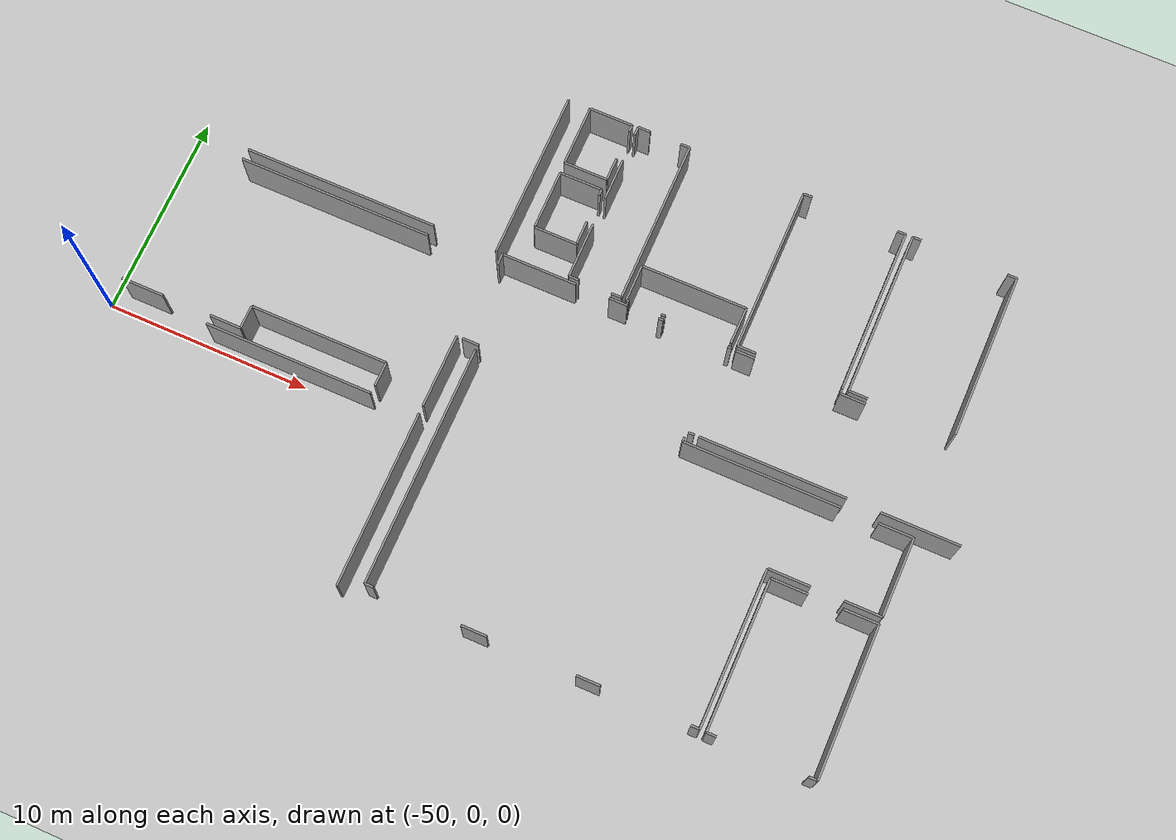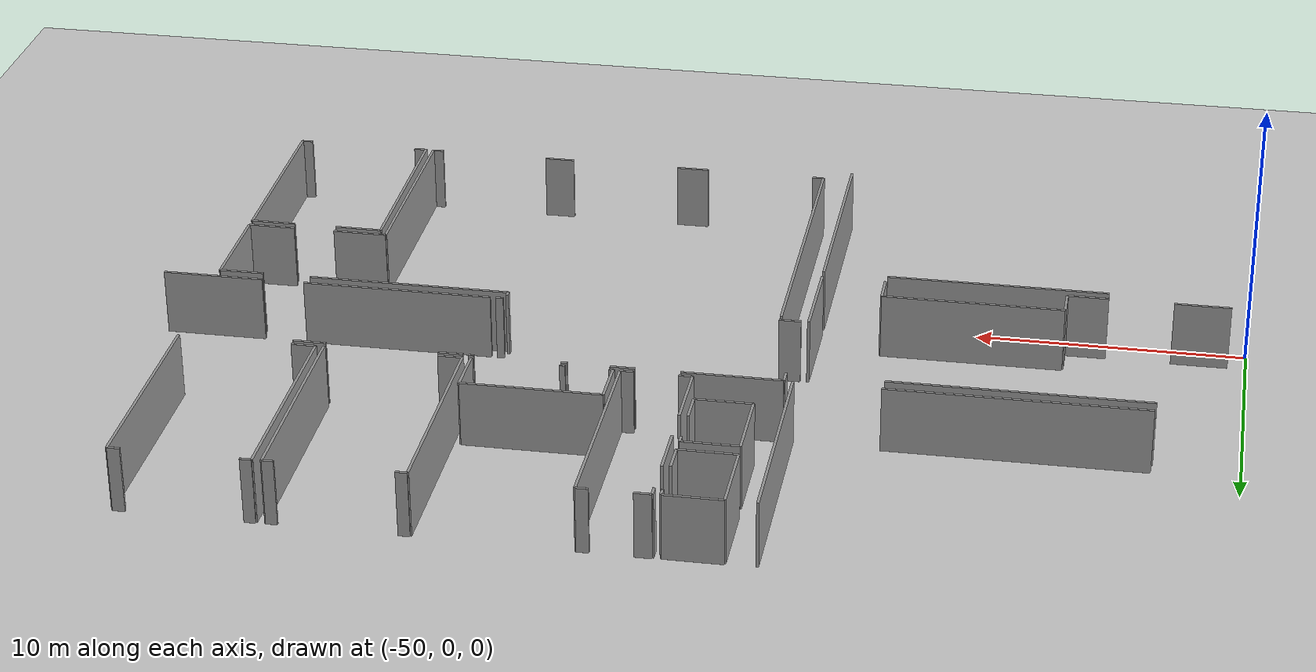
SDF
<sdf version="1.6">
 <world name="default">
  <model name="ground_plane">
   <static>1</static>
   <link name="link">
    <collision name="collision">
     <geometry><plane><normal>0 0 1</normal><size>100 100</size></plane></geometry>
     <surface><friction><ode><mu>100</mu><mu2>50</mu2></ode></friction></surface>
    </collision>
    <visual name="visual">
     <cast_shadows>0</cast_shadows>
     <geometry><plane><normal>0 0 1</normal><size>100 100</size></plane></geometry>
     <material>
      <script><uri>file://media/materials/scripts/gazebo.material</uri><name>Gazebo/Grey</name></script>
     </material>
    </visual>
   </link>
  </model>
  <model name="50037764_PLAN2">
   <static>1</static>
   <link name="Wall_204">
    <collision name="Wall_204_Collision">
     <geometry><box><size>1.18063958513 0.1 2.5</size></box></geometry>
     <pose>0.590319792567 0 1.25 0 0 0</pose>
    </collision>
    <visual name="Wall_204_Visual">
     <pose>0.590319792567 0 1.25 0 0 0</pose>
     <geometry><box><size>1.18063958513 0.1 2.5</size></box></geometry>
     <material>
      <script><uri>file://media/materials/scripts/gazebo.material</uri><name>Gazebo/Grey</name></script>
      <ambient>1 1 1 1</ambient>
     </material>
    </visual>
    <pose>99.2213127256 -20.51248157 0 0 0 1.57079632679</pose>
   </link>
   <link name="Wall_205">
    <collision name="Wall_205_Collision">
     <geometry><box><size>6.74792821191 0.1 2.5</size></box></geometry>
     <pose>3.37396410595 0 1.25 0 0 0</pose>
    </collision>
    <visual name="Wall_205_Visual">
     <pose>3.37396410595 0 1.25 0 0 0</pose>
     <geometry><box><size>6.74792821191 0.1 2.5</size></box></geometry>
     <material>
      <script><uri>file://media/materials/scripts/gazebo.material</uri><name>Gazebo/Grey</name></script>
      <ambient>1 1 1 1</ambient>
     </material>
    </visual>
    <pose>99.2213127256 -19.3318419848 0 0 0 3.14159265359</pose>
   </link>
   <link name="Wall_206">
    <collision name="Wall_206_Collision">
     <geometry><box><size>1.15521887234 0.1 2.5</size></box></geometry>
     <pose>0.577609436169 0 1.25 0 0 0</pose>
    </collision>
    <visual name="Wall_206_Visual">
     <pose>0.577609436169 0 1.25 0 0 0</pose>
     <geometry><box><size>1.15521887234 0.1 2.5</size></box></geometry>
     <material>
      <script><uri>file://media/materials/scripts/gazebo.material</uri><name>Gazebo/Grey</name></script>
      <ambient>1 1 1 1</ambient>
     </material>
    </visual>
    <pose>92.4733845137 -19.3318419848 0 0 0 -1.57079632679</pose>
   </link>
   <link name="Wall_207">
    <collision name="Wall_207_Collision">
     <geometry><box><size>1.53719050282 0.1 2.5</size></box></geometry>
     <pose>0.768595251411 0 1.25 0 0 0</pose>
    </collision>
    <visual name="Wall_207_Visual">
     <pose>0.768595251411 0 1.25 0 0 0</pose>
     <geometry><box><size>1.53719050282 0.1 2.5</size></box></geometry>
     <material>
      <script><uri>file://media/materials/scripts/gazebo.material</uri><name>Gazebo/Grey</name></script>
      <ambient>1 1 1 1</ambient>
     </material>
    </visual>
    <pose>92.4733845137 -20.4870608572 0 0 0 3.14159265359</pose>
   </link>
   <link name="Wall_208">
    <collision name="Wall_208_Collision">
     <geometry><box><size>2.09288728456 0.1 2.5</size></box></geometry>
     <pose>1.04644364228 0 1.25 0 0 0</pose>
    </collision>
    <visual name="Wall_208_Visual">
     <pose>1.04644364228 0 1.25 0 0 0</pose>
     <geometry><box><size>2.09288728456 0.1 2.5</size></box></geometry>
     <material>
      <script><uri>file://media/materials/scripts/gazebo.material</uri><name>Gazebo/Grey</name></script>
      <ambient>1 1 1 1</ambient>
     </material>
    </visual>
    <pose>88.5420712797 -20.4870608572 0 0 0 3.14159265359</pose>
   </link>
   <link name="Wall_211">
    <collision name="Wall_211_Collision">
     <geometry><box><size>9.51065127866 0.1 2.5</size></box></geometry>
     <pose>4.75532563933 0 1.25 0 0 0</pose>
    </collision>
    <visual name="Wall_211_Visual">
     <pose>4.75532563933 0 1.25 0 0 0</pose>
     <geometry><box><size>9.51065127866 0.1 2.5</size></box></geometry>
     <material>
      <script><uri>file://media/materials/scripts/gazebo.material</uri><name>Gazebo/Grey</name></script>
      <ambient>1 1 1 1</ambient>
     </material>
    </visual>
    <pose>88.8633890894 -12.9726727337 0 0 0 0.0</pose>
   </link>
   <link name="Wall_212">
    <collision name="Wall_212_Collision">
     <geometry><box><size>3.62835113588 0.1 2.5</size></box></geometry>
     <pose>1.81417556794 0 1.25 0 0 0</pose>
    </collision>
    <visual name="Wall_212_Visual">
     <pose>1.81417556794 0 1.25 0 0 0</pose>
     <geometry><box><size>3.62835113588 0.1 2.5</size></box></geometry>
     <material>
      <script><uri>file://media/materials/scripts/gazebo.material</uri><name>Gazebo/Grey</name></script>
      <ambient>1 1 1 1</ambient>
     </material>
    </visual>
    <pose>101.608571864 -16.8841832325 0 0 0 -1.57619107583</pose>
   </link>
   <link name="Wall_213">
    <collision name="Wall_213_Collision">
     <geometry><box><size>9.51319334994 0.1 2.5</size></box></geometry>
     <pose>4.75659667497 0 1.25 0 0 0</pose>
    </collision>
    <visual name="Wall_213_Visual">
     <pose>4.75659667497 0 1.25 0 0 0</pose>
     <geometry><box><size>9.51319334994 0.1 2.5</size></box></geometry>
     <material>
      <script><uri>file://media/materials/scripts/gazebo.material</uri><name>Gazebo/Grey</name></script>
      <ambient>1 1 1 1</ambient>
     </material>
    </visual>
    <pose>98.4256444151 -12.4344654024 0 0 0 3.14159265359</pose>
   </link>
   <link name="Wall_215">
    <collision name="Wall_215_Collision">
     <geometry><box><size>8.29780412157 0.1 2.5</size></box></geometry>
     <pose>4.14890206079 0 1.25 0 0 0</pose>
    </collision>
    <visual name="Wall_215_Visual">
     <pose>4.14890206079 0 1.25 0 0 0</pose>
     <geometry><box><size>8.29780412157 0.1 2.5</size></box></geometry>
     <material>
      <script><uri>file://media/materials/scripts/gazebo.material</uri><name>Gazebo/Grey</name></script>
      <ambient>1 1 1 1</ambient>
     </material>
    </visual>
    <pose>101.56205196 -4.136661752 0 0 0 -1.57045933662</pose>
   </link>
   <link name="Wall_219">
    <collision name="Wall_219_Collision">
     <geometry><box><size>8.23249783924 0.1 2.5</size></box></geometry>
     <pose>4.11624891962 0 1.25 0 0 0</pose>
    </collision>
    <visual name="Wall_219_Visual">
     <pose>4.11624891962 0 1.25 0 0 0</pose>
     <geometry><box><size>8.23249783924 0.1 2.5</size></box></geometry>
     <material>
      <script><uri>file://media/materials/scripts/gazebo.material</uri><name>Gazebo/Grey</name></script>
      <ambient>1 1 1 1</ambient>
     </material>
    </visual>
    <pose>90.9527174742 -20.9085362754 0 0 0 0.0</pose>
   </link>
   <link name="Wall_220">
    <collision name="Wall_220_Collision">
     <geometry><box><size>8.58228685109 0.1 2.5</size></box></geometry>
     <pose>4.29114342554 0 1.25 0 0 0</pose>
    </collision>
    <visual name="Wall_220_Visual">
     <pose>4.29114342554 0 1.25 0 0 0</pose>
     <geometry><box><size>8.58228685109 0.1 2.5</size></box></geometry>
     <material>
      <script><uri>file://media/materials/scripts/gazebo.material</uri><name>Gazebo/Grey</name></script>
      <ambient>1 1 1 1</ambient>
     </material>
    </visual>
    <pose>101.58416798 -20.9085362754 0 0 0 -1.57082594677</pose>
   </link>
   <link name="Wall_226">
    <collision name="Wall_226_Collision">
     <geometry><box><size>0.286999847476 0.1 2.5</size></box></geometry>
     <pose>0.143499923738 0 1.25 0 0 0</pose>
    </collision>
    <visual name="Wall_226_Visual">
     <pose>0.143499923738 0 1.25 0 0 0</pose>
     <geometry><box><size>0.286999847476 0.1 2.5</size></box></geometry>
     <material>
      <script><uri>file://media/materials/scripts/gazebo.material</uri><name>Gazebo/Grey</name></script>
      <ambient>1 1 1 1</ambient>
     </material>
    </visual>
    <pose>113.254308811 -16.8977833138 0 0 0 3.14159265359</pose>
   </link>
   <link name="Wall_227">
    <collision name="Wall_227_Collision">
     <geometry><box><size>0.80939549545 0.1 2.5</size></box></geometry>
     <pose>0.404697747725 0 1.25 0 0 0</pose>
    </collision>
    <visual name="Wall_227_Visual">
     <pose>0.404697747725 0 1.25 0 0 0</pose>
     <geometry><box><size>0.80939549545 0.1 2.5</size></box></geometry>
     <material>
      <script><uri>file://media/materials/scripts/gazebo.material</uri><name>Gazebo/Grey</name></script>
      <ambient>1 1 1 1</ambient>
     </material>
    </visual>
    <pose>102.694036301 -16.8977833138 0 0 0 3.14159265359</pose>
   </link>
   <link name="Wall_228">
    <collision name="Wall_228_Collision">
     <geometry><box><size>0.537775179216 0.1 2.5</size></box></geometry>
     <pose>0.268887589608 0 1.25 0 0 0</pose>
    </collision>
    <visual name="Wall_228_Visual">
     <pose>0.268887589608 0 1.25 0 0 0</pose>
     <geometry><box><size>0.537775179216 0.1 2.5</size></box></geometry>
     <material>
      <script><uri>file://media/materials/scripts/gazebo.material</uri><name>Gazebo/Grey</name></script>
      <ambient>1 1 1 1</ambient>
     </material>
    </visual>
    <pose>101.884640805 -12.9867812293 0 0 0 1.57079632679</pose>
   </link>
   <link name="Wall_229">
    <collision name="Wall_229_Collision">
     <geometry><box><size>3.67736031318 0.1 2.5</size></box></geometry>
     <pose>1.83868015659 0 1.25 0 0 0</pose>
    </collision>
    <visual name="Wall_229_Visual">
     <pose>1.83868015659 0 1.25 0 0 0</pose>
     <geometry><box><size>3.67736031318 0.1 2.5</size></box></geometry>
     <material>
      <script><uri>file://media/materials/scripts/gazebo.material</uri><name>Gazebo/Grey</name></script>
      <ambient>1 1 1 1</ambient>
     </material>
    </visual>
    <pose>101.884640805 -12.4490060501 0 0 0 0.0</pose>
   </link>
   <link name="Wall_230">
    <collision name="Wall_230_Collision">
     <geometry><box><size>0.901164268646 0.1 2.5</size></box></geometry>
     <pose>0.450582134323 0 1.25 0 0 0</pose>
    </collision>
    <visual name="Wall_230_Visual">
     <pose>0.450582134323 0 1.25 0 0 0</pose>
     <geometry><box><size>0.901164268646 0.1 2.5</size></box></geometry>
     <material>
      <script><uri>file://media/materials/scripts/gazebo.material</uri><name>Gazebo/Grey</name></script>
      <ambient>1 1 1 1</ambient>
     </material>
    </visual>
    <pose>107.211042758 -12.4490060501 0 0 0 0.0</pose>
   </link>
   <link name="Wall_231">
    <collision name="Wall_231_Collision">
     <geometry><box><size>0.230820072195 0.1 2.5</size></box></geometry>
     <pose>0.115410036097 0 1.25 0 0 0</pose>
    </collision>
    <visual name="Wall_231_Visual">
     <pose>0.115410036097 0 1.25 0 0 0</pose>
     <geometry><box><size>0.230820072195 0.1 2.5</size></box></geometry>
     <material>
      <script><uri>file://media/materials/scripts/gazebo.material</uri><name>Gazebo/Grey</name></script>
      <ambient>1 1 1 1</ambient>
     </material>
    </visual>
    <pose>109.650668565 -12.4490060501 0 0 0 0.0</pose>
   </link>
   <link name="Wall_232">
    <collision name="Wall_232_Collision">
     <geometry><box><size>0.192689003 0.1 2.5</size></box></geometry>
     <pose>0.0963445014998 0 1.25 0 0 0</pose>
    </collision>
    <visual name="Wall_232_Visual">
     <pose>0.0963445014998 0 1.25 0 0 0</pose>
     <geometry><box><size>0.192689003 0.1 2.5</size></box></geometry>
     <material>
      <script><uri>file://media/materials/scripts/gazebo.material</uri><name>Gazebo/Grey</name></script>
      <ambient>1 1 1 1</ambient>
     </material>
    </visual>
    <pose>113.049163659 -12.4490060501 0 0 0 0.0</pose>
   </link>
   <link name="Wall_233">
    <collision name="Wall_233_Collision">
     <geometry><box><size>0.492399206874 0.1 2.5</size></box></geometry>
     <pose>0.246199603437 0 1.25 0 0 0</pose>
    </collision>
    <visual name="Wall_233_Visual">
     <pose>0.246199603437 0 1.25 0 0 0</pose>
     <geometry><box><size>0.492399206874 0.1 2.5</size></box></geometry>
     <material>
      <script><uri>file://media/materials/scripts/gazebo.material</uri><name>Gazebo/Grey</name></script>
      <ambient>1 1 1 1</ambient>
     </material>
    </visual>
    <pose>107.705729829 -12.2101021913 0 0 0 3.14159265359</pose>
   </link>
   <link name="Wall_234">
    <collision name="Wall_234_Collision">
     <geometry><box><size>0.496720728049 0.1 2.5</size></box></geometry>
     <pose>0.248360364025 0 1.25 0 0 0</pose>
    </collision>
    <visual name="Wall_234_Visual">
     <pose>0.248360364025 0 1.25 0 0 0</pose>
     <geometry><box><size>0.496720728049 0.1 2.5</size></box></geometry>
     <material>
      <script><uri>file://media/materials/scripts/gazebo.material</uri><name>Gazebo/Grey</name></script>
      <ambient>1 1 1 1</ambient>
     </material>
    </visual>
    <pose>105.599115359 -12.2101021913 0 0 0 3.14159265359</pose>
   </link>
   <link name="Wall_235">
    <collision name="Wall_235_Collision">
     <geometry><box><size>2.77431491179 0.1 2.5</size></box></geometry>
     <pose>1.3871574559 0 1.25 0 0 0</pose>
    </collision>
    <visual name="Wall_235_Visual">
     <pose>1.3871574559 0 1.25 0 0 0</pose>
     <geometry><box><size>2.77431491179 0.1 2.5</size></box></geometry>
     <material>
      <script><uri>file://media/materials/scripts/gazebo.material</uri><name>Gazebo/Grey</name></script>
      <ambient>1 1 1 1</ambient>
     </material>
    </visual>
    <pose>105.102394631 -12.2101021913 0 0 0 1.57079632679</pose>
   </link>
   <link name="Wall_236">
    <collision name="Wall_236_Collision">
     <geometry><box><size>2.08536275357 0.1 2.5</size></box></geometry>
     <pose>1.04268137679 0 1.25 0 0 0</pose>
    </collision>
    <visual name="Wall_236_Visual">
     <pose>1.04268137679 0 1.25 0 0 0</pose>
     <geometry><box><size>2.08536275357 0.1 2.5</size></box></geometry>
     <material>
      <script><uri>file://media/materials/scripts/gazebo.material</uri><name>Gazebo/Grey</name></script>
      <ambient>1 1 1 1</ambient>
     </material>
    </visual>
    <pose>105.102394631 -8.02549697494 0 0 0 1.57079632679</pose>
   </link>
   <link name="Wall_237">
    <collision name="Wall_237_Collision">
     <geometry><box><size>0.417636890538 0.1 2.5</size></box></geometry>
     <pose>0.208818445269 0 1.25 0 0 0</pose>
    </collision>
    <visual name="Wall_237_Visual">
     <pose>0.208818445269 0 1.25 0 0 0</pose>
     <geometry><box><size>0.417636890538 0.1 2.5</size></box></geometry>
     <material>
      <script><uri>file://media/materials/scripts/gazebo.material</uri><name>Gazebo/Grey</name></script>
      <ambient>1 1 1 1</ambient>
     </material>
    </visual>
    <pose>105.102394631 -4.53230972596 0 0 0 1.57079632679</pose>
   </link>
   <link name="Wall_238">
    <collision name="Wall_238_Collision">
     <geometry><box><size>0.624841120545 0.1 2.5</size></box></geometry>
     <pose>0.312420560273 0 1.25 0 0 0</pose>
    </collision>
    <visual name="Wall_238_Visual">
     <pose>0.312420560273 0 1.25 0 0 0</pose>
     <geometry><box><size>0.624841120545 0.1 2.5</size></box></geometry>
     <material>
      <script><uri>file://media/materials/scripts/gazebo.material</uri><name>Gazebo/Grey</name></script>
      <ambient>1 1 1 1</ambient>
     </material>
    </visual>
    <pose>105.102394631 -4.11467283543 0 0 0 0.0</pose>
   </link>
   <link name="Wall_239">
    <collision name="Wall_239_Collision">
     <geometry><box><size>0.450455030759 0.1 2.5</size></box></geometry>
     <pose>0.22522751538 0 1.25 0 0 0</pose>
    </collision>
    <visual name="Wall_239_Visual">
     <pose>0.22522751538 0 1.25 0 0 0</pose>
     <geometry><box><size>0.450455030759 0.1 2.5</size></box></geometry>
     <material>
      <script><uri>file://media/materials/scripts/gazebo.material</uri><name>Gazebo/Grey</name></script>
      <ambient>1 1 1 1</ambient>
     </material>
    </visual>
    <pose>107.255020591 -4.11467283543 0 0 0 0.0</pose>
   </link>
   <link name="Wall_240">
    <collision name="Wall_240_Collision">
     <geometry><box><size>8.09542935983 0.1 2.5</size></box></geometry>
     <pose>4.04771467992 0 1.25 0 0 0</pose>
    </collision>
    <visual name="Wall_240_Visual">
     <pose>4.04771467992 0 1.25 0 0 0</pose>
     <geometry><box><size>8.09542935983 0.1 2.5</size></box></geometry>
     <material>
      <script><uri>file://media/materials/scripts/gazebo.material</uri><name>Gazebo/Grey</name></script>
      <ambient>1 1 1 1</ambient>
     </material>
    </visual>
    <pose>107.705475622 -4.11467283543 0 0 0 -1.57076492548</pose>
   </link>
   <link name="Wall_241">
    <collision name="Wall_241_Collision">
     <geometry><box><size>2.13889877472 0.1 2.5</size></box></geometry>
     <pose>1.06944938736 0 1.25 0 0 0</pose>
    </collision>
    <visual name="Wall_241_Visual">
     <pose>1.06944938736 0 1.25 0 0 0</pose>
     <geometry><box><size>2.13889877472 0.1 2.5</size></box></geometry>
     <material>
      <script><uri>file://media/materials/scripts/gazebo.material</uri><name>Gazebo/Grey</name></script>
      <ambient>1 1 1 1</ambient>
     </material>
    </visual>
    <pose>104.807005948 -7.13554324063 0 0 0 3.14159265359</pose>
   </link>
   <link name="Wall_242">
    <collision name="Wall_242_Collision">
     <geometry><box><size>2.99163658549 0.1 2.5</size></box></geometry>
     <pose>1.49581829274 0 1.25 0 0 0</pose>
    </collision>
    <visual name="Wall_242_Visual">
     <pose>1.49581829274 0 1.25 0 0 0</pose>
     <geometry><box><size>2.99163658549 0.1 2.5</size></box></geometry>
     <material>
      <script><uri>file://media/materials/scripts/gazebo.material</uri><name>Gazebo/Grey</name></script>
      <ambient>1 1 1 1</ambient>
     </material>
    </visual>
    <pose>102.668107174 -7.13554324063 0 0 0 1.57079632679</pose>
   </link>
   <link name="Wall_243">
    <collision name="Wall_243_Collision">
     <geometry><box><size>2.13889877472 0.1 2.5</size></box></geometry>
     <pose>1.06944938736 0 1.25 0 0 0</pose>
    </collision>
    <visual name="Wall_243_Visual">
     <pose>1.06944938736 0 1.25 0 0 0</pose>
     <geometry><box><size>2.13889877472 0.1 2.5</size></box></geometry>
     <material>
      <script><uri>file://media/materials/scripts/gazebo.material</uri><name>Gazebo/Grey</name></script>
      <ambient>1 1 1 1</ambient>
     </material>
    </visual>
    <pose>102.668107174 -4.14390665514 0 0 0 0.0</pose>
   </link>
   <link name="Wall_244">
    <collision name="Wall_244_Collision">
     <geometry><box><size>0.332426661244 0.1 2.5</size></box></geometry>
     <pose>0.166213330622 0 1.25 0 0 0</pose>
    </collision>
    <visual name="Wall_244_Visual">
     <pose>0.166213330622 0 1.25 0 0 0</pose>
     <geometry><box><size>0.332426661244 0.1 2.5</size></box></geometry>
     <material>
      <script><uri>file://media/materials/scripts/gazebo.material</uri><name>Gazebo/Grey</name></script>
      <ambient>1 1 1 1</ambient>
     </material>
    </visual>
    <pose>104.807005948 -4.14390665514 0 0 0 -1.57079632679</pose>
   </link>
   <link name="Wall_245">
    <collision name="Wall_245_Collision">
     <geometry><box><size>1.14156794957 0.1 2.5</size></box></geometry>
     <pose>0.570783974783 0 1.25 0 0 0</pose>
    </collision>
    <visual name="Wall_245_Visual">
     <pose>0.570783974783 0 1.25 0 0 0</pose>
     <geometry><box><size>1.14156794957 0.1 2.5</size></box></geometry>
     <material>
      <script><uri>file://media/materials/scripts/gazebo.material</uri><name>Gazebo/Grey</name></script>
      <ambient>1 1 1 1</ambient>
     </material>
    </visual>
    <pose>104.807005948 -5.99397529107 0 0 0 -1.57079632679</pose>
   </link>
   <link name="Wall_246">
    <collision name="Wall_246_Collision">
     <geometry><box><size>2.1050892267 0.1 2.5</size></box></geometry>
     <pose>1.05254461335 0 1.25 0 0 0</pose>
    </collision>
    <visual name="Wall_246_Visual">
     <pose>1.05254461335 0 1.25 0 0 0</pose>
     <geometry><box><size>2.1050892267 0.1 2.5</size></box></geometry>
     <material>
      <script><uri>file://media/materials/scripts/gazebo.material</uri><name>Gazebo/Grey</name></script>
      <ambient>1 1 1 1</ambient>
     </material>
    </visual>
    <pose>104.79887132 -10.6364583863 0 0 0 3.14159265359</pose>
   </link>
   <link name="Wall_247">
    <collision name="Wall_247_Collision">
     <geometry><box><size>2.94702323453 0.1 2.5</size></box></geometry>
     <pose>1.47351161727 0 1.25 0 0 0</pose>
    </collision>
    <visual name="Wall_247_Visual">
     <pose>1.47351161727 0 1.25 0 0 0</pose>
     <geometry><box><size>2.94702323453 0.1 2.5</size></box></geometry>
     <material>
      <script><uri>file://media/materials/scripts/gazebo.material</uri><name>Gazebo/Grey</name></script>
      <ambient>1 1 1 1</ambient>
     </material>
    </visual>
    <pose>102.693782094 -10.6364583863 0 0 0 1.57079632679</pose>
   </link>
   <link name="Wall_248">
    <collision name="Wall_248_Collision">
     <geometry><box><size>2.0987340485 0.1 2.5</size></box></geometry>
     <pose>1.04936702425 0 1.25 0 0 0</pose>
    </collision>
    <visual name="Wall_248_Visual">
     <pose>1.04936702425 0 1.25 0 0 0</pose>
     <geometry><box><size>2.0987340485 0.1 2.5</size></box></geometry>
     <material>
      <script><uri>file://media/materials/scripts/gazebo.material</uri><name>Gazebo/Grey</name></script>
      <ambient>1 1 1 1</ambient>
     </material>
    </visual>
    <pose>102.693782094 -7.68943515176 0 0 0 0.0</pose>
   </link>
   <link name="Wall_249">
    <collision name="Wall_249_Collision">
     <geometry><box><size>0.307895673395 0.1 2.5</size></box></geometry>
     <pose>0.153947836697 0 1.25 0 0 0</pose>
    </collision>
    <visual name="Wall_249_Visual">
     <pose>0.153947836697 0 1.25 0 0 0</pose>
     <geometry><box><size>0.307895673395 0.1 2.5</size></box></geometry>
     <material>
      <script><uri>file://media/materials/scripts/gazebo.material</uri><name>Gazebo/Grey</name></script>
      <ambient>1 1 1 1</ambient>
     </material>
    </visual>
    <pose>104.792516142 -7.68943515176 0 0 0 -1.57079632679</pose>
   </link>
   <link name="Wall_250">
    <collision name="Wall_250_Collision">
     <geometry><box><size>1.18856241733 0.1 2.5</size></box></geometry>
     <pose>0.594281208665 0 1.25 0 0 0</pose>
    </collision>
    <visual name="Wall_250_Visual">
     <pose>0.594281208665 0 1.25 0 0 0</pose>
     <geometry><box><size>1.18856241733 0.1 2.5</size></box></geometry>
     <material>
      <script><uri>file://media/materials/scripts/gazebo.material</uri><name>Gazebo/Grey</name></script>
      <ambient>1 1 1 1</ambient>
     </material>
    </visual>
    <pose>104.792516142 -9.44791295948 0 0 0 -1.56544935604</pose>
   </link>
   <link name="Wall_251">
    <collision name="Wall_251_Collision">
     <geometry><box><size>0.202857288118 0.1 2.5</size></box></geometry>
     <pose>0.101428644059 0 1.25 0 0 0</pose>
    </collision>
    <visual name="Wall_251_Visual">
     <pose>0.101428644059 0 1.25 0 0 0</pose>
     <geometry><box><size>0.202857288118 0.1 2.5</size></box></geometry>
     <material>
      <script><uri>file://media/materials/scripts/gazebo.material</uri><name>Gazebo/Grey</name></script>
      <ambient>1 1 1 1</ambient>
     </material>
    </visual>
    <pose>109.893182165 -12.2341501856 0 0 0 3.14159265359</pose>
   </link>
   <link name="Wall_252">
    <collision name="Wall_252_Collision">
     <geometry><box><size>0.14515227007 0.1 2.5</size></box></geometry>
     <pose>0.0725761350348 0 1.25 0 0 0</pose>
    </collision>
    <visual name="Wall_252_Visual">
     <pose>0.0725761350348 0 1.25 0 0 0</pose>
     <geometry><box><size>0.14515227007 0.1 2.5</size></box></geometry>
     <material>
      <script><uri>file://media/materials/scripts/gazebo.material</uri><name>Gazebo/Grey</name></script>
      <ambient>1 1 1 1</ambient>
     </material>
    </visual>
    <pose>108.105343434 -12.2341501856 0 0 0 3.14159265359</pose>
   </link>
   <link name="Wall_253">
    <collision name="Wall_253_Collision">
     <geometry><box><size>1.81994509126 0.1 2.5</size></box></geometry>
     <pose>0.90997254563 0 1.25 0 0 0</pose>
    </collision>
    <visual name="Wall_253_Visual">
     <pose>0.90997254563 0 1.25 0 0 0</pose>
     <geometry><box><size>1.81994509126 0.1 2.5</size></box></geometry>
     <material>
      <script><uri>file://media/materials/scripts/gazebo.material</uri><name>Gazebo/Grey</name></script>
      <ambient>1 1 1 1</ambient>
     </material>
    </visual>
    <pose>107.960191164 -12.2341501856 0 0 0 1.57079632679</pose>
   </link>
   <link name="Wall_254">
    <collision name="Wall_254_Collision">
     <geometry><box><size>5.16345518328 0.1 2.5</size></box></geometry>
     <pose>2.58172759164 0 1.25 0 0 0</pose>
    </collision>
    <visual name="Wall_254_Visual">
     <pose>2.58172759164 0 1.25 0 0 0</pose>
     <geometry><box><size>5.16345518328 0.1 2.5</size></box></geometry>
     <material>
      <script><uri>file://media/materials/scripts/gazebo.material</uri><name>Gazebo/Grey</name></script>
      <ambient>1 1 1 1</ambient>
     </material>
    </visual>
    <pose>107.960191164 -10.4142050943 0 0 0 0.0</pose>
   </link>
   <link name="Wall_255">
    <collision name="Wall_255_Collision">
     <geometry><box><size>1.82006446275 0.1 2.5</size></box></geometry>
     <pose>0.910032231377 0 1.25 0 0 0</pose>
    </collision>
    <visual name="Wall_255_Visual">
     <pose>0.910032231377 0 1.25 0 0 0</pose>
     <geometry><box><size>1.82006446275 0.1 2.5</size></box></geometry>
     <material>
      <script><uri>file://media/materials/scripts/gazebo.material</uri><name>Gazebo/Grey</name></script>
      <ambient>1 1 1 1</ambient>
     </material>
    </visual>
    <pose>113.123646347 -10.4142050943 0 0 0 -1.58224945972</pose>
   </link>
   <link name="Wall_256">
    <collision name="Wall_256_Collision">
     <geometry><box><size>0.416137068483 0.1 2.5</size></box></geometry>
     <pose>0.208068534242 0 1.25 0 0 0</pose>
    </collision>
    <visual name="Wall_256_Visual">
     <pose>0.208068534242 0 1.25 0 0 0</pose>
     <geometry><box><size>0.416137068483 0.1 2.5</size></box></geometry>
     <material>
      <script><uri>file://media/materials/scripts/gazebo.material</uri><name>Gazebo/Grey</name></script>
      <ambient>1 1 1 1</ambient>
     </material>
    </visual>
    <pose>118.498347654 -28.9018252072 0 0 0 3.14159265359</pose>
   </link>
   <link name="Wall_257">
    <collision name="Wall_257_Collision">
     <geometry><box><size>1.14698256139 0.1 2.5</size></box></geometry>
     <pose>0.573491280696 0 1.25 0 0 0</pose>
    </collision>
    <visual name="Wall_257_Visual">
     <pose>0.573491280696 0 1.25 0 0 0</pose>
     <geometry><box><size>1.14698256139 0.1 2.5</size></box></geometry>
     <material>
      <script><uri>file://media/materials/scripts/gazebo.material</uri><name>Gazebo/Grey</name></script>
      <ambient>1 1 1 1</ambient>
     </material>
    </visual>
    <pose>113.875336824 -28.9018252072 0 0 0 3.14159265359</pose>
   </link>
   <link name="Wall_258">
    <collision name="Wall_258_Collision">
     <geometry><box><size>1.23290457064 0.1 2.5</size></box></geometry>
     <pose>0.616452285322 0 1.25 0 0 0</pose>
    </collision>
    <visual name="Wall_258_Visual">
     <pose>0.616452285322 0 1.25 0 0 0</pose>
     <geometry><box><size>1.23290457064 0.1 2.5</size></box></geometry>
     <material>
      <script><uri>file://media/materials/scripts/gazebo.material</uri><name>Gazebo/Grey</name></script>
      <ambient>1 1 1 1</ambient>
     </material>
    </visual>
    <pose>108.504448625 -28.9018252072 0 0 0 3.14159265359</pose>
   </link>
   <link name="Wall_259">
    <collision name="Wall_259_Collision">
     <geometry><box><size>0.429864253394 0.1 2.5</size></box></geometry>
     <pose>0.214932126697 0 1.25 0 0 0</pose>
    </collision>
    <visual name="Wall_259_Visual">
     <pose>0.214932126697 0 1.25 0 0 0</pose>
     <geometry><box><size>0.429864253394 0.1 2.5</size></box></geometry>
     <material>
      <script><uri>file://media/materials/scripts/gazebo.material</uri><name>Gazebo/Grey</name></script>
      <ambient>1 1 1 1</ambient>
     </material>
    </visual>
    <pose>103.085769485 -28.9018252072 0 0 0 3.14159265359</pose>
   </link>
   <link name="Wall_260">
    <collision name="Wall_260_Collision">
     <geometry><box><size>11.738624231 0.1 2.5</size></box></geometry>
     <pose>5.86931211551 0 1.25 0 0 0</pose>
    </collision>
    <visual name="Wall_260_Visual">
     <pose>5.86931211551 0 1.25 0 0 0</pose>
     <geometry><box><size>11.738624231 0.1 2.5</size></box></geometry>
     <material>
      <script><uri>file://media/materials/scripts/gazebo.material</uri><name>Gazebo/Grey</name></script>
      <ambient>1 1 1 1</ambient>
     </material>
    </visual>
    <pose>102.655905232 -28.9018252072 0 0 0 1.57079632679</pose>
   </link>
   <link name="Wall_261">
    <collision name="Wall_261_Collision">
     <geometry><box><size>0.214855864558 0.1 2.5</size></box></geometry>
     <pose>0.107427932279 0 1.25 0 0 0</pose>
    </collision>
    <visual name="Wall_261_Visual">
     <pose>0.107427932279 0 1.25 0 0 0</pose>
     <geometry><box><size>0.214855864558 0.1 2.5</size></box></geometry>
     <material>
      <script><uri>file://media/materials/scripts/gazebo.material</uri><name>Gazebo/Grey</name></script>
      <ambient>1 1 1 1</ambient>
     </material>
    </visual>
    <pose>112.887742132 -17.1632009762 0 0 0 -1.57079632679</pose>
   </link>
   <link name="Wall_262">
    <collision name="Wall_262_Collision">
     <geometry><box><size>7.55808632874 0.1 2.5</size></box></geometry>
     <pose>3.77904316437 0 1.25 0 0 0</pose>
    </collision>
    <visual name="Wall_262_Visual">
     <pose>3.77904316437 0 1.25 0 0 0</pose>
     <geometry><box><size>7.55808632874 0.1 2.5</size></box></geometry>
     <material>
      <script><uri>file://media/materials/scripts/gazebo.material</uri><name>Gazebo/Grey</name></script>
      <ambient>1 1 1 1</ambient>
     </material>
    </visual>
    <pose>112.887742132 -17.3780568407 0 0 0 0.0</pose>
   </link>
   <link name="Wall_263">
    <collision name="Wall_263_Collision">
     <geometry><box><size>1.65310895318 0.1 2.5</size></box></geometry>
     <pose>0.826554476588 0 1.25 0 0 0</pose>
    </collision>
    <visual name="Wall_263_Visual">
     <pose>0.826554476588 0 1.25 0 0 0</pose>
     <geometry><box><size>1.65310895318 0.1 2.5</size></box></geometry>
     <material>
      <script><uri>file://media/materials/scripts/gazebo.material</uri><name>Gazebo/Grey</name></script>
      <ambient>1 1 1 1</ambient>
     </material>
    </visual>
    <pose>122.254003762 -17.3780568407 0 0 0 0.0</pose>
   </link>
   <link name="Wall_264">
    <collision name="Wall_264_Collision">
     <geometry><box><size>3.84976358737 0.1 2.5</size></box></geometry>
     <pose>1.92488179369 0 1.25 0 0 0</pose>
    </collision>
    <visual name="Wall_264_Visual">
     <pose>1.92488179369 0 1.25 0 0 0</pose>
     <geometry><box><size>3.84976358737 0.1 2.5</size></box></geometry>
     <material>
      <script><uri>file://media/materials/scripts/gazebo.material</uri><name>Gazebo/Grey</name></script>
      <ambient>1 1 1 1</ambient>
     </material>
    </visual>
    <pose>123.907112715 -17.3780568407 0 0 0 -1.57079632679</pose>
   </link>
   <link name="Wall_265">
    <collision name="Wall_265_Collision">
     <geometry><box><size>1.77614520311 0.1 2.5</size></box></geometry>
     <pose>0.888072601556 0 1.25 0 0 0</pose>
    </collision>
    <visual name="Wall_265_Visual">
     <pose>0.888072601556 0 1.25 0 0 0</pose>
     <geometry><box><size>1.77614520311 0.1 2.5</size></box></geometry>
     <material>
      <script><uri>file://media/materials/scripts/gazebo.material</uri><name>Gazebo/Grey</name></script>
      <ambient>1 1 1 1</ambient>
     </material>
    </visual>
    <pose>123.907112715 -21.2278204281 0 0 0 3.14159265359</pose>
   </link>
   <link name="Wall_266">
    <collision name="Wall_266_Collision">
     <geometry><box><size>2.03467385225 0.1 2.5</size></box></geometry>
     <pose>1.01733692613 0 1.25 0 0 0</pose>
    </collision>
    <visual name="Wall_266_Visual">
     <pose>1.01733692613 0 1.25 0 0 0</pose>
     <geometry><box><size>2.03467385225 0.1 2.5</size></box></geometry>
     <material>
      <script><uri>file://media/materials/scripts/gazebo.material</uri><name>Gazebo/Grey</name></script>
      <ambient>1 1 1 1</ambient>
     </material>
    </visual>
    <pose>120.559459047 -21.2278204281 0 0 0 3.14159265359</pose>
   </link>
   <link name="Wall_267">
    <collision name="Wall_267_Collision">
     <geometry><box><size>7.67405031865 0.1 2.5</size></box></geometry>
     <pose>3.83702515932 0 1.25 0 0 0</pose>
    </collision>
    <visual name="Wall_267_Visual">
     <pose>3.83702515932 0 1.25 0 0 0</pose>
     <geometry><box><size>7.67405031865 0.1 2.5</size></box></geometry>
     <material>
      <script><uri>file://media/materials/scripts/gazebo.material</uri><name>Gazebo/Grey</name></script>
      <ambient>1 1 1 1</ambient>
     </material>
    </visual>
    <pose>118.524785195 -21.2278204281 0 0 0 -1.57424139068</pose>
   </link>
   <link name="Wall_277">
    <collision name="Wall_277_Collision">
     <geometry><box><size>1.23671767756 0.1 2.5</size></box></geometry>
     <pose>0.618358838782 0 1.25 0 0 0</pose>
    </collision>
    <visual name="Wall_277_Visual">
     <pose>0.618358838782 0 1.25 0 0 0</pose>
     <geometry><box><size>1.23671767756 0.1 2.5</size></box></geometry>
     <material>
      <script><uri>file://media/materials/scripts/gazebo.material</uri><name>Gazebo/Grey</name></script>
      <ambient>1 1 1 1</ambient>
     </material>
    </visual>
    <pose>119.735065331 -12.4780873456 0 0 0 3.14159265359</pose>
   </link>
   <link name="Wall_278">
    <collision name="Wall_278_Collision">
     <geometry><box><size>0.909807310997 0.1 2.5</size></box></geometry>
     <pose>0.454903655499 0 1.25 0 0 0</pose>
    </collision>
    <visual name="Wall_278_Visual">
     <pose>0.454903655499 0 1.25 0 0 0</pose>
     <geometry><box><size>0.909807310997 0.1 2.5</size></box></geometry>
     <material>
      <script><uri>file://media/materials/scripts/gazebo.material</uri><name>Gazebo/Grey</name></script>
      <ambient>1 1 1 1</ambient>
     </material>
    </visual>
    <pose>114.366464996 -12.4780873456 0 0 0 3.14159265359</pose>
   </link>
   <link name="Wall_279">
    <collision name="Wall_279_Collision">
     <geometry><box><size>7.09644618435 0.1 2.5</size></box></geometry>
     <pose>3.54822309218 0 1.25 0 0 0</pose>
    </collision>
    <visual name="Wall_279_Visual">
     <pose>3.54822309218 0 1.25 0 0 0</pose>
     <geometry><box><size>7.09644618435 0.1 2.5</size></box></geometry>
     <material>
      <script><uri>file://media/materials/scripts/gazebo.material</uri><name>Gazebo/Grey</name></script>
      <ambient>1 1 1 1</ambient>
     </material>
    </visual>
    <pose>113.456657685 -16.8886826987 0 0 0 0.0</pose>
   </link>
   <link name="Wall_280">
    <collision name="Wall_280_Collision">
     <geometry><box><size>3.78107682139 0.1 2.5</size></box></geometry>
     <pose>1.8905384107 0 1.25 0 0 0</pose>
    </collision>
    <visual name="Wall_280_Visual">
     <pose>1.8905384107 0 1.25 0 0 0</pose>
     <geometry><box><size>3.78107682139 0.1 2.5</size></box></geometry>
     <material>
      <script><uri>file://media/materials/scripts/gazebo.material</uri><name>Gazebo/Grey</name></script>
      <ambient>1 1 1 1</ambient>
     </material>
    </visual>
    <pose>122.148762011 -16.8886826987 0 0 0 0.0</pose>
   </link>
   <link name="Wall_287">
    <collision name="Wall_287_Collision">
     <geometry><box><size>0.903960547054 0.1 2.5</size></box></geometry>
     <pose>0.451980273527 0 1.25 0 0 0</pose>
    </collision>
    <visual name="Wall_287_Visual">
     <pose>0.451980273527 0 1.25 0 0 0</pose>
     <geometry><box><size>0.903960547054 0.1 2.5</size></box></geometry>
     <material>
      <script><uri>file://media/materials/scripts/gazebo.material</uri><name>Gazebo/Grey</name></script>
      <ambient>1 1 1 1</ambient>
     </material>
    </visual>
    <pose>114.328842341 -12.2341501856 0 0 0 3.14159265359</pose>
   </link>
   <link name="Wall_288">
    <collision name="Wall_288_Collision">
     <geometry><box><size>8.09748843358 0.1 2.5</size></box></geometry>
     <pose>4.04874421679 0 1.25 0 0 0</pose>
    </collision>
    <visual name="Wall_288_Visual">
     <pose>4.04874421679 0 1.25 0 0 0</pose>
     <geometry><box><size>8.09748843358 0.1 2.5</size></box></geometry>
     <material>
      <script><uri>file://media/materials/scripts/gazebo.material</uri><name>Gazebo/Grey</name></script>
      <ambient>1 1 1 1</ambient>
     </material>
    </visual>
    <pose>113.424881794 -12.2341501856 0 0 0 1.57079632679</pose>
   </link>
   <link name="Wall_289">
    <collision name="Wall_289_Collision">
     <geometry><box><size>0.42401748945 0.1 2.5</size></box></geometry>
     <pose>0.212008744725 0 1.25 0 0 0</pose>
    </collision>
    <visual name="Wall_289_Visual">
     <pose>0.212008744725 0 1.25 0 0 0</pose>
     <geometry><box><size>0.42401748945 0.1 2.5</size></box></geometry>
     <material>
      <script><uri>file://media/materials/scripts/gazebo.material</uri><name>Gazebo/Grey</name></script>
      <ambient>1 1 1 1</ambient>
     </material>
    </visual>
    <pose>113.424881794 -4.136661752 0 0 0 0.0</pose>
   </link>
   <link name="Wall_290">
    <collision name="Wall_290_Collision">
     <geometry><box><size>0.415628654227 0.1 2.5</size></box></geometry>
     <pose>0.207814327114 0 1.25 0 0 0</pose>
    </collision>
    <visual name="Wall_290_Visual">
     <pose>0.207814327114 0 1.25 0 0 0</pose>
     <geometry><box><size>0.415628654227 0.1 2.5</size></box></geometry>
     <material>
      <script><uri>file://media/materials/scripts/gazebo.material</uri><name>Gazebo/Grey</name></script>
      <ambient>1 1 1 1</ambient>
     </material>
    </visual>
    <pose>118.060094565 -4.136661752 0 0 0 0.0</pose>
   </link>
   <link name="Wall_291">
    <collision name="Wall_291_Collision">
     <geometry><box><size>8.09757002885 0.1 2.5</size></box></geometry>
     <pose>4.04878501442 0 1.25 0 0 0</pose>
    </collision>
    <visual name="Wall_291_Visual">
     <pose>4.04878501442 0 1.25 0 0 0</pose>
     <geometry><box><size>8.09757002885 0.1 2.5</size></box></geometry>
     <material>
      <script><uri>file://media/materials/scripts/gazebo.material</uri><name>Gazebo/Grey</name></script>
      <ambient>1 1 1 1</ambient>
     </material>
    </visual>
    <pose>118.475723219 -4.136661752 0 0 0 -1.56630711074</pose>
   </link>
   <link name="Wall_292">
    <collision name="Wall_292_Collision">
     <geometry><box><size>0.901164268646 0.1 2.5</size></box></geometry>
     <pose>0.450582134323 0 1.25 0 0 0</pose>
    </collision>
    <visual name="Wall_292_Visual">
     <pose>0.450582134323 0 1.25 0 0 0</pose>
     <geometry><box><size>0.901164268646 0.1 2.5</size></box></geometry>
     <material>
      <script><uri>file://media/materials/scripts/gazebo.material</uri><name>Gazebo/Grey</name></script>
      <ambient>1 1 1 1</ambient>
     </material>
    </visual>
    <pose>119.717525039 -12.2106360262 0 0 0 3.14159265359</pose>
   </link>
   <link name="Wall_293">
    <collision name="Wall_293_Collision">
     <geometry><box><size>8.09563272154 0.1 2.5</size></box></geometry>
     <pose>4.04781636077 0 1.25 0 0 0</pose>
    </collision>
    <visual name="Wall_293_Visual">
     <pose>4.04781636077 0 1.25 0 0 0</pose>
     <geometry><box><size>8.09563272154 0.1 2.5</size></box></geometry>
     <material>
      <script><uri>file://media/materials/scripts/gazebo.material</uri><name>Gazebo/Grey</name></script>
      <ambient>1 1 1 1</ambient>
     </material>
    </visual>
    <pose>118.816360771 -12.2106360262 0 0 0 1.57079632679</pose>
   </link>
   <link name="Wall_294">
    <collision name="Wall_294_Collision">
     <geometry><box><size>0.421221211043 0.1 2.5</size></box></geometry>
     <pose>0.210610605521 0 1.25 0 0 0</pose>
    </collision>
    <visual name="Wall_294_Visual">
     <pose>0.210610605521 0 1.25 0 0 0</pose>
     <geometry><box><size>0.421221211043 0.1 2.5</size></box></geometry>
     <material>
      <script><uri>file://media/materials/scripts/gazebo.material</uri><name>Gazebo/Grey</name></script>
      <ambient>1 1 1 1</ambient>
     </material>
    </visual>
    <pose>118.816360771 -4.11500330469 0 0 0 0.0</pose>
   </link>
   <link name="Wall_295">
    <collision name="Wall_295_Collision">
     <geometry><box><size>0.45528496619 0.1 2.5</size></box></geometry>
     <pose>0.227642483095 0 1.25 0 0 0</pose>
    </collision>
    <visual name="Wall_295_Visual">
     <pose>0.227642483095 0 1.25 0 0 0</pose>
     <geometry><box><size>0.45528496619 0.1 2.5</size></box></geometry>
     <material>
      <script><uri>file://media/materials/scripts/gazebo.material</uri><name>Gazebo/Grey</name></script>
      <ambient>1 1 1 1</ambient>
     </material>
    </visual>
    <pose>123.443184707 -4.11500330469 0 0 0 0.0</pose>
   </link>
   <link name="Wall_296">
    <collision name="Wall_296_Collision">
     <geometry><box><size>8.09564191707 0.1 2.5</size></box></geometry>
     <pose>4.04782095854 0 1.25 0 0 0</pose>
    </collision>
    <visual name="Wall_296_Visual">
     <pose>4.04782095854 0 1.25 0 0 0</pose>
     <geometry><box><size>8.09564191707 0.1 2.5</size></box></geometry>
     <material>
      <script><uri>file://media/materials/scripts/gazebo.material</uri><name>Gazebo/Grey</name></script>
      <ambient>1 1 1 1</ambient>
     </material>
    </visual>
    <pose>123.898469673 -4.11500330469 0 0 0 -1.56928910268</pose>
   </link>
   <link name="Wall_338">
    <collision name="Wall_338_Collision">
     <geometry><box><size>0.417153896995 0.1 2.5</size></box></geometry>
     <pose>0.208576948498 0 1.25 0 0 0</pose>
    </collision>
    <visual name="Wall_338_Visual">
     <pose>0.208576948498 0 1.25 0 0 0</pose>
     <geometry><box><size>0.417153896995 0.1 2.5</size></box></geometry>
     <material>
      <script><uri>file://media/materials/scripts/gazebo.material</uri><name>Gazebo/Grey</name></script>
      <ambient>1 1 1 1</ambient>
     </material>
    </visual>
    <pose>123.928720321 -28.9119934923 0 0 0 3.14159265359</pose>
   </link>
   <link name="Wall_339">
    <collision name="Wall_339_Collision">
     <geometry><box><size>0.465453251309 0.1 2.5</size></box></geometry>
     <pose>0.232726625655 0 1.25 0 0 0</pose>
    </collision>
    <visual name="Wall_339_Visual">
     <pose>0.232726625655 0 1.25 0 0 0</pose>
     <geometry><box><size>0.465453251309 0.1 2.5</size></box></geometry>
     <material>
      <script><uri>file://media/materials/scripts/gazebo.material</uri><name>Gazebo/Grey</name></script>
      <ambient>1 1 1 1</ambient>
     </material>
    </visual>
    <pose>119.273425187 -28.9119934923 0 0 0 3.14159265359</pose>
   </link>
   <link name="Wall_340">
    <collision name="Wall_340_Collision">
     <geometry><box><size>7.334129849 0.1 2.5</size></box></geometry>
     <pose>3.6670649245 0 1.25 0 0 0</pose>
    </collision>
    <visual name="Wall_340_Visual">
     <pose>3.6670649245 0 1.25 0 0 0</pose>
     <geometry><box><size>7.334129849 0.1 2.5</size></box></geometry>
     <material>
      <script><uri>file://media/materials/scripts/gazebo.material</uri><name>Gazebo/Grey</name></script>
      <ambient>1 1 1 1</ambient>
     </material>
    </visual>
    <pose>118.807971936 -28.9119934923 0 0 0 1.57079632679</pose>
   </link>
   <link name="Wall_341">
    <collision name="Wall_341_Collision">
     <geometry><box><size>1.7669937465 0.1 2.5</size></box></geometry>
     <pose>0.883496873252 0 1.25 0 0 0</pose>
    </collision>
    <visual name="Wall_341_Visual">
     <pose>0.883496873252 0 1.25 0 0 0</pose>
     <geometry><box><size>1.7669937465 0.1 2.5</size></box></geometry>
     <material>
      <script><uri>file://media/materials/scripts/gazebo.material</uri><name>Gazebo/Grey</name></script>
      <ambient>1 1 1 1</ambient>
     </material>
    </visual>
    <pose>118.807971936 -21.5778636433 0 0 0 0.0</pose>
   </link>
   <link name="Wall_342">
    <collision name="Wall_342_Collision">
     <geometry><box><size>1.68615587981 0.1 2.5</size></box></geometry>
     <pose>0.843077939905 0 1.25 0 0 0</pose>
    </collision>
    <visual name="Wall_342_Visual">
     <pose>0.843077939905 0 1.25 0 0 0</pose>
     <geometry><box><size>1.68615587981 0.1 2.5</size></box></geometry>
     <material>
      <script><uri>file://media/materials/scripts/gazebo.material</uri><name>Gazebo/Grey</name></script>
      <ambient>1 1 1 1</ambient>
     </material>
    </visual>
    <pose>122.203670751 -21.5778636433 0 0 0 0.0</pose>
   </link>
   <link name="Wall_343">
    <collision name="Wall_343_Collision">
     <geometry><box><size>7.33423297702 0.1 2.5</size></box></geometry>
     <pose>3.66711648851 0 1.25 0 0 0</pose>
    </collision>
    <visual name="Wall_343_Visual">
     <pose>3.66711648851 0 1.25 0 0 0</pose>
     <geometry><box><size>7.33423297702 0.1 2.5</size></box></geometry>
     <material>
      <script><uri>file://media/materials/scripts/gazebo.material</uri><name>Gazebo/Grey</name></script>
      <ambient>1 1 1 1</ambient>
     </material>
    </visual>
    <pose>123.889826631 -21.5778636433 0 0 0 -1.56549326743</pose>
   </link>
   <pose>-135.8 21.3069729015 0 0 0 0</pose>
  </model>
 </world>
</sdf>
